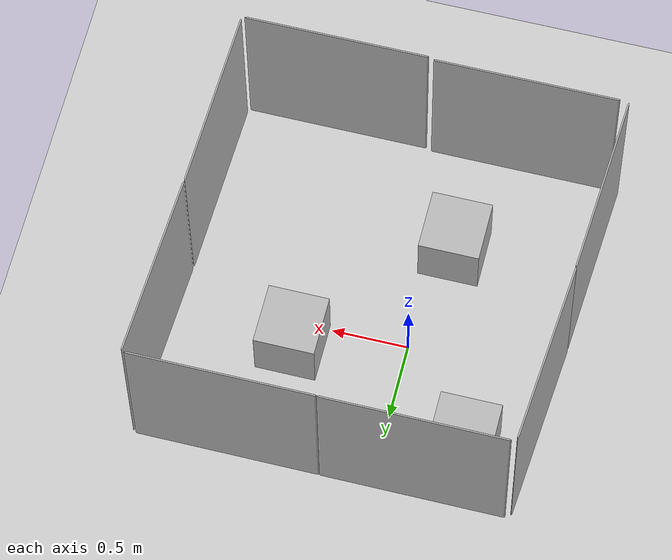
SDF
<sdf version="1.6">
 <world name="default">
  <light name="sun" type="directional">
   <pose>0 0 10 0 -0 0</pose>
   <diffuse>0.8 0.8 0.8 1</diffuse>
   <specular>0.1 0.1 0.1 1</specular>
   <attenuation>
    <range>1000</range>
    <constant>0.9</constant>
    <linear>0.01</linear>
    <quadratic>0.001</quadratic>
   </attenuation>
   <direction>-0.5 0.5 -1</direction>
  </light>
  <model name="ground_plane">
   <static>1</static>
   <link name="link">
    <collision name="collision">
     <geometry><plane><normal>0 0 1</normal><size>100 100</size></plane></geometry>
     <surface><friction><ode><mu>100</mu><mu2>50</mu2></ode></friction></surface>
    </collision>
    <visual name="visual">
     <cast_shadows>0</cast_shadows>
     <geometry><plane><normal>0 0 1</normal><size>100 100</size></plane></geometry>
     <material>
      <script><uri>file://media/materials/scripts/gazebo.material</uri><name>Gazebo/Grey</name></script>
     </material>
    </visual>
   </link>
  </model>
  <gravity>0 0 -9.8</gravity>
  <magnetic_field>6e-06 2.3e-05 -4.2e-05</magnetic_field>
  <atmosphere type="adiabatic"/>
  <physics name="default_physics" default="0" type="ode">
   <max_step_size>0.001</max_step_size>
   <real_time_factor>1</real_time_factor>
   <real_time_update_rate>1000</real_time_update_rate>
  </physics>
  <scene><ambient>0.4 0.4 0.4 1</ambient><background>0.7 0.7 0.7 1</background><shadows>1</shadows></scene>
  <spherical_coordinates>
   <surface_model>EARTH_WGS84</surface_model>
   <latitude_deg>0</latitude_deg>
   <longitude_deg>0</longitude_deg>
   <elevation>0</elevation>
   <heading_deg>0</heading_deg>
  </spherical_coordinates>
  <model name="nist_maze_wall_120">
   <static>1</static>
   <link name="nist_maze_wall_120_link">
    <collision name="collision">
     <geometry>
      <mesh><uri>model://nist_maze_wall_120/meshes/nist_maze_wall_120.dae</uri><scale>1 1 1</scale></mesh>
     </geometry>
    </collision>
    <visual name="visual">
     <geometry>
      <mesh><uri>model://nist_maze_wall_120/meshes/nist_maze_wall_120.dae</uri><scale>1 1 1</scale></mesh>
     </geometry>
    </visual>
   </link>
   <pose>0.828624 -2.04483 0 0 -0 0</pose>
  </model>
  <model name="nist_maze_wall_120_clone">
   <static>1</static>
   <link name="nist_maze_wall_120_link">
    <collision name="collision">
     <geometry>
      <mesh><uri>model://nist_maze_wall_120/meshes/nist_maze_wall_120.dae</uri><scale>1 1 1</scale></mesh>
     </geometry>
    </collision>
    <visual name="visual">
     <geometry>
      <mesh><uri>model://nist_maze_wall_120/meshes/nist_maze_wall_120.dae</uri><scale>1 1 1</scale></mesh>
     </geometry>
    </visual>
   </link>
   <pose>-0.405291 -2.03202 0 0 -0 0</pose>
  </model>
  <model name="nist_maze_wall_120_clone_0">
   <static>1</static>
   <link name="nist_maze_wall_120_link">
    <collision name="collision">
     <geometry>
      <mesh><uri>model://nist_maze_wall_120/meshes/nist_maze_wall_120.dae</uri><scale>1 1 1</scale></mesh>
     </geometry>
    </collision>
    <visual name="visual">
     <geometry>
      <mesh><uri>model://nist_maze_wall_120/meshes/nist_maze_wall_120.dae</uri><scale>1 1 1</scale></mesh>
     </geometry>
    </visual>
   </link>
   <pose>2.0665 -0.848041 0 0 -0 1.53631</pose>
  </model>
  <model name="nist_maze_wall_120_clone_1">
   <static>1</static>
   <link name="nist_maze_wall_120_link">
    <collision name="collision">
     <geometry>
      <mesh><uri>model://nist_maze_wall_120/meshes/nist_maze_wall_120.dae</uri><scale>1 1 1</scale></mesh>
     </geometry>
    </collision>
    <visual name="visual">
     <geometry>
      <mesh><uri>model://nist_maze_wall_120/meshes/nist_maze_wall_120.dae</uri><scale>1 1 1</scale></mesh>
     </geometry>
    </visual>
   </link>
   <pose>0.921089 0.41228 0 0 0 -1.62057</pose>
  </model>
  <model name="nist_maze_wall_120_clone_2">
   <static>1</static>
   <link name="nist_maze_wall_120_link">
    <collision name="collision">
     <geometry>
      <mesh><uri>model://nist_maze_wall_120/meshes/nist_maze_wall_120.dae</uri><scale>1 1 1</scale></mesh>
     </geometry>
    </collision>
    <visual name="visual">
     <geometry>
      <mesh><uri>model://nist_maze_wall_120/meshes/nist_maze_wall_120.dae</uri><scale>1 1 1</scale></mesh>
     </geometry>
    </visual>
   </link>
   <pose>0.932784 0.388072 0 0 -0 0</pose>
  </model>
  <model name="nist_maze_wall_120_clone_3">
   <static>1</static>
   <link name="nist_maze_wall_120_link">
    <collision name="collision">
     <geometry>
      <mesh><uri>model://nist_maze_wall_120/meshes/nist_maze_wall_120.dae</uri><scale>1 1 1</scale></mesh>
     </geometry>
    </collision>
    <visual name="visual">
     <geometry>
      <mesh><uri>model://nist_maze_wall_120/meshes/nist_maze_wall_120.dae</uri><scale>1 1 1</scale></mesh>
     </geometry>
    </visual>
   </link>
   <pose>-0.267959 0.389142 0 0 -0 0</pose>
  </model>
  <model name="nist_maze_wall_120_clone_4">
   <static>1</static>
   <link name="nist_maze_wall_120_link">
    <collision name="collision">
     <geometry>
      <mesh><uri>model://nist_maze_wall_120/meshes/nist_maze_wall_120.dae</uri><scale>1 1 1</scale></mesh>
     </geometry>
    </collision>
    <visual name="visual">
     <geometry>
      <mesh><uri>model://nist_maze_wall_120/meshes/nist_maze_wall_120.dae</uri><scale>1 1 1</scale></mesh>
     </geometry>
    </visual>
   </link>
   <pose>-0.348158 0.32514 0 0 -0 1.49429</pose>
  </model>
  <model name="nist_maze_wall_120_clone_5">
   <static>1</static>
   <link name="nist_maze_wall_120_link">
    <collision name="collision">
     <geometry>
      <mesh><uri>model://nist_maze_wall_120/meshes/nist_maze_wall_120.dae</uri><scale>1 1 1</scale></mesh>
     </geometry>
    </collision>
    <visual name="visual">
     <geometry>
      <mesh><uri>model://nist_maze_wall_120/meshes/nist_maze_wall_120.dae</uri><scale>1 1 1</scale></mesh>
     </geometry>
    </visual>
   </link>
   <pose>-0.427214 -0.863173 0 0 -0 1.51117</pose>
  </model>
  <model name="cardboard_box">
   <pose>0.720733 0.167416 0.149 0 -0 0</pose>
   <link name="link">
    <inertial>
     <mass>2</mass>
     <inertia>
      <ixx>0.0416667</ixx>
      <ixy>0</ixy>
      <ixz>0</ixz>
      <iyy>0.0566667</iyy>
      <iyz>0</iyz>
      <izz>0.0683333</izz>
     </inertia>
    </inertial>
    <collision name="collision">
     <geometry><box><size>0.5 0.4 0.3</size></box></geometry>
     <surface>
      <friction><ode><mu>1</mu><mu2>1</mu2></ode></friction>
      <contact><ode><kp>1e+07</kp><kd>1</kd><min_depth>0.001</min_depth><max_vel>0.1</max_vel></ode></contact>
     </surface>
    </collision>
    <visual name="visual">
     <pose>0 0 -0.15 0 -0 0</pose>
     <geometry>
      <mesh><uri>model://cardboard_box/meshes/cardboard_box.dae</uri><scale>1 1 1</scale></mesh>
     </geometry>
    </visual>
   </link>
  </model>
  <model name="cardboard_box_clone">
   <pose>-0.510567 0.621134 0.149 0 -0 0</pose>
   <link name="link">
    <inertial>
     <mass>2</mass>
     <inertia>
      <ixx>0.0416667</ixx>
      <ixy>0</ixy>
      <ixz>0</ixz>
      <iyy>0.0566667</iyy>
      <iyz>0</iyz>
      <izz>0.0683333</izz>
     </inertia>
    </inertial>
    <collision name="collision">
     <geometry><box><size>0.5 0.4 0.3</size></box></geometry>
     <surface>
      <friction><ode><mu>1</mu><mu2>1</mu2></ode></friction>
      <contact><ode><kp>1e+07</kp><kd>1</kd><min_depth>0.001</min_depth><max_vel>0.1</max_vel></ode></contact>
     </surface>
    </collision>
    <visual name="visual">
     <pose>0 0 -0.15 0 -0 0</pose>
     <geometry>
      <mesh><uri>model://cardboard_box/meshes/cardboard_box.dae</uri><scale>1 1 1</scale></mesh>
     </geometry>
    </visual>
   </link>
  </model>
  <model name="cardboard_box_clone_0">
   <pose>-0.130333 -0.732888 0.149 0 -0 0</pose>
   <link name="link">
    <inertial>
     <mass>2</mass>
     <inertia>
      <ixx>0.0416667</ixx>
      <ixy>0</ixy>
      <ixz>0</ixz>
      <iyy>0.0566667</iyy>
      <iyz>0</iyz>
      <izz>0.0683333</izz>
     </inertia>
    </inertial>
    <collision name="collision">
     <geometry><box><size>0.5 0.4 0.3</size></box></geometry>
     <surface>
      <friction><ode><mu>1</mu><mu2>1</mu2></ode></friction>
      <contact><ode><kp>1e+07</kp><kd>1</kd><min_depth>0.001</min_depth><max_vel>0.1</max_vel></ode></contact>
     </surface>
    </collision>
    <visual name="visual">
     <pose>0 0 -0.15 0 -0 0</pose>
     <geometry>
      <mesh><uri>model://cardboard_box/meshes/cardboard_box.dae</uri><scale>1 1 1</scale></mesh>
     </geometry>
    </visual>
   </link>
  </model>
 </world>
</sdf>
